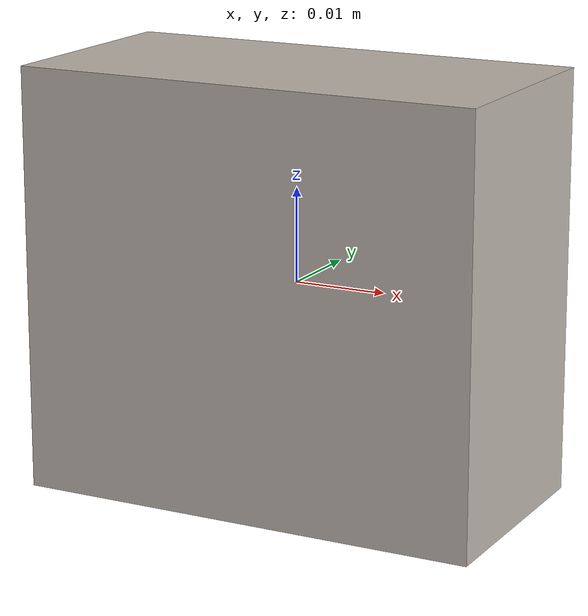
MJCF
<mujoco model="zertec">
  <asset>
    <texture type="cube" file="textures/smallboxes/zertec.png" rgb1="1 1 1" name="tex-zertec"/>
    <material name="zertec" reflectance="0.5" texrepeat="3 3" texture="tex-zertec" texuniform="false"/>
  </asset>
  <worldbody>
    <body>
      <body name="collision">
        <geom pos="0 0 0" size="0.025 0.0125 0.0225" type="box" solimp="0.998 0.998 0.001" solref="0.001 1" density="150" friction="0.95 0.3 0.1" material="zertec" group="1" condim="4"/>
      </body>
      <site rgba="0 0 0 0" size="0.005" pos="0 0 -0.05" name="bottom_site"/>
      <site rgba="0 0 0 0" size="0.005" pos="0 0 0.03" name="top_site"/>
      <site rgba="0 0 0 0" size="0.005" pos="0.06 0.06 0" name="horizontal_radius_site"/>
    </body>
  </worldbody>
</mujoco>
